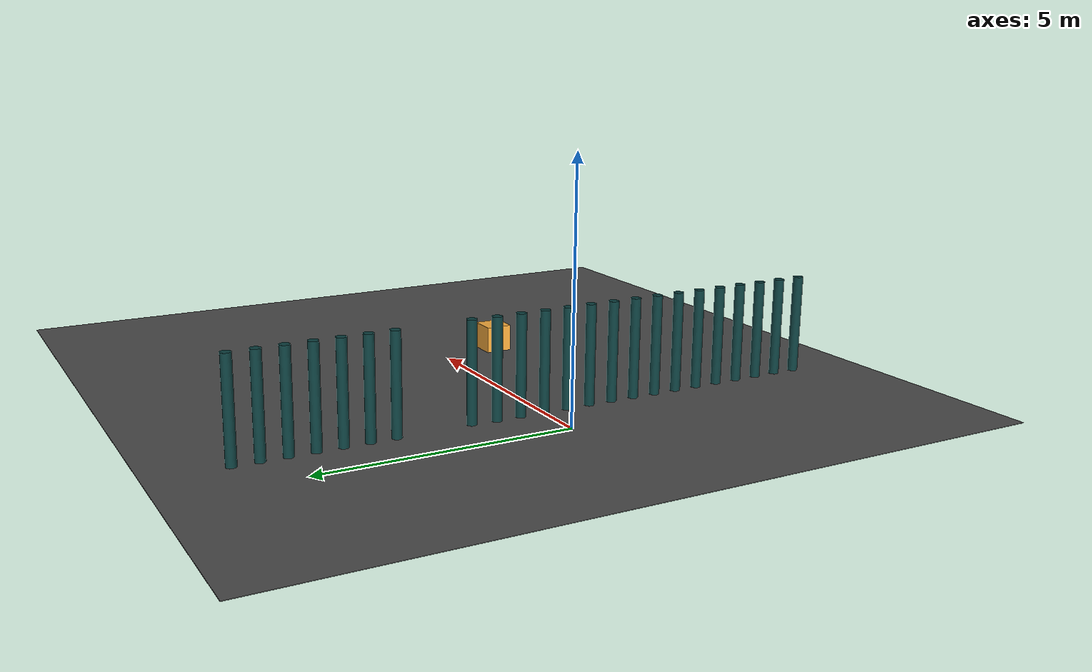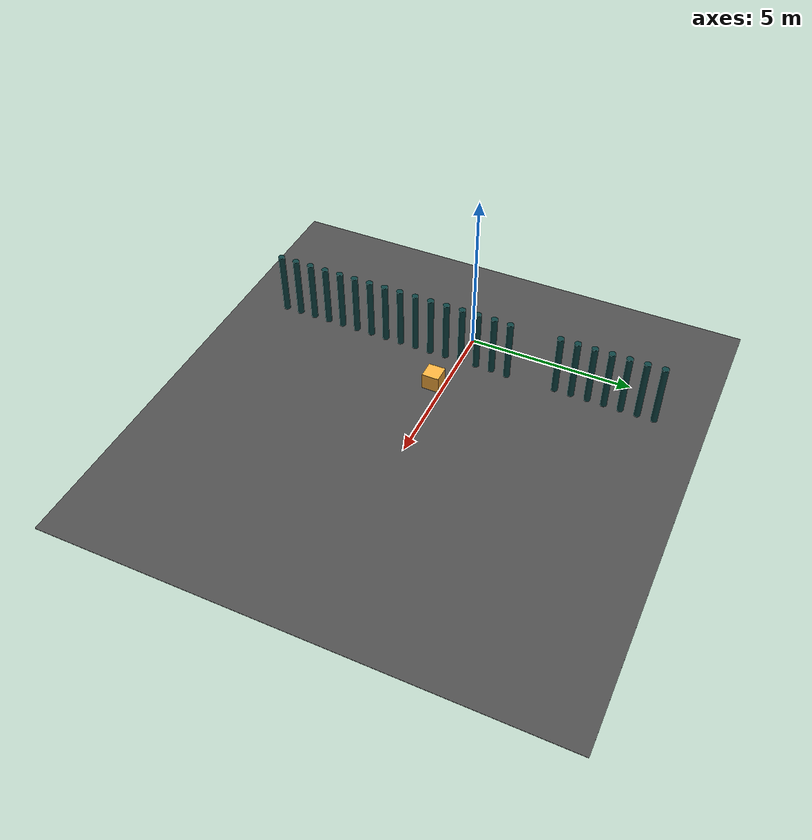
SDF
<sdf version="1.6">
 <world name="default">
  <light name="sun" type="directional">
   <pose>0 0 10 0 -0 0</pose>
   <diffuse>0.8 0.8 0.8 1</diffuse>
   <specular>0.2 0.2 0.2 1</specular>
   <attenuation>
    <range>1000</range>
    <constant>0.9</constant>
    <linear>0.01</linear>
    <quadratic>0.001</quadratic>
   </attenuation>
   <direction>-0.5 0.1 -0.9</direction>
  </light>
  <plugin name="ros_interface_plugin" filename="librotors_gazebo_ros_interface_plugin.so"/>
  <gravity>0 0 -9.8</gravity>
  <magnetic_field>6e-06 2.3e-05 -4.2e-05</magnetic_field>
  <atmosphere type="adiabatic"/>
  <physics name="default_physics" default="0" type="ode">
   <max_step_size>0.001</max_step_size>
   <real_time_factor>1</real_time_factor>
   <real_time_update_rate>1000</real_time_update_rate>
  </physics>
  <scene>
   <ambient>0.78 0.78 0.78 1</ambient>
   <background>0.35 0.35 0.35 1</background>
   <shadows>1</shadows>
  </scene>
  <spherical_coordinates>
   <surface_model>EARTH_WGS84</surface_model>
   <latitude_deg>0</latitude_deg>
   <longitude_deg>0</longitude_deg>
   <elevation>0</elevation>
   <heading_deg>0</heading_deg>
  </spherical_coordinates>
  <model name="env_plane">
   <link name="link">
    <inertial>
     <mass>1</mass>
     <inertia><ixx>1</ixx><ixy>0</ixy><ixz>0</ixz><iyy>1</iyy><iyz>0</iyz><izz>1</izz></inertia>
    </inertial>
    <visual name="visual">
     <cast_shadows>0</cast_shadows>
     <geometry><box><size>15 15 0.01</size></box></geometry>
     <material>
      <script>
       <uri>model://asphalt_plane/materials/scripts</uri>
       <uri>model://asphalt_plane/materials/textures</uri>
       <name>vrc/asphalt</name>
      </script>
      <shader type="pixel"><normal_map>__default__</normal_map></shader>
      <diffuse>0.7 0.7 0.7 1</diffuse>
      <ambient>0.5 0.5 0.5 1</ambient>
      <specular>0.5 0.5 0.5 1</specular>
      <emissive>0.7 0.7 0.7 1</emissive>
     </material>
    </visual>
    <collision name="collision">
     <geometry><box><size>20 20 0.1</size></box></geometry>
     <surface>
      <friction>
       <ode><mu>1</mu><mu2>1</mu2><fdir1>0 0 0</fdir1><slip1>0</slip1><slip2>0</slip2></ode>
       <torsional>
        <coefficient>1</coefficient>
        <patch_radius>0</patch_radius>
        <surface_radius>0</surface_radius>
        <use_patch_radius>1</use_patch_radius>
        <ode><slip>0</slip></ode>
       </torsional>
      </friction>
      <bounce><restitution_coefficient>0</restitution_coefficient><threshold>1e+06</threshold></bounce>
      <contact>
       <collide_without_contact>0</collide_without_contact>
       <collide_without_contact_bitmask>1</collide_without_contact_bitmask>
       <collide_bitmask>1</collide_bitmask>
       <ode>
        <soft_cfm>0</soft_cfm>
        <soft_erp>0.2</soft_erp>
        <kp>1e+13</kp>
        <kd>1</kd>
        <max_vel>0.01</max_vel>
        <min_depth>0</min_depth>
       </ode>
       <bullet>
        <split_impulse>1</split_impulse>
        <split_impulse_penetration_threshold>-0.01</split_impulse_penetration_threshold>
        <soft_cfm>0</soft_cfm>
        <soft_erp>0.2</soft_erp>
        <kp>1e+13</kp>
        <kd>1</kd>
       </bullet>
      </contact>
     </surface>
    </collision>
   </link>
   <static>1</static>
   <pose>4 0 0 0 -0 0</pose>
  </model>
  <model name="obstacle">
   <link name="link">
    <inertial>
     <mass>112.569</mass>
     <inertia><ixx>33.2512</ixx><ixy>0</ixy><ixz>0</ixz><iyy>33.2512</iyy><iyz>0</iyz><izz>0.537779</izz></inertia>
    </inertial>
    <visual name="visual">
     <geometry><cylinder><radius>0.1</radius><length>2</length></cylinder></geometry>
     <material>
      <script><name>Gazebo/Grey</name><uri>file://media/materials/scripts/gazebo.material</uri></script>
      <shader type="pixel"><normal_map>__default__</normal_map></shader>
      <ambient>0.05 0.25 0.25 1</ambient>
      <diffuse>0.3 0.3 0.3 1</diffuse>
      <specular>0.01 0.01 0.01 1</specular>
      <emissive>0.1 0.1 0.1 1</emissive>
      <lighting>1</lighting>
     </material>
    </visual>
    <collision name="collision">
     <geometry><cylinder><radius>0.097748</radius><length>1.87509</length></cylinder></geometry>
     <surface>
      <friction>
       <ode><mu>1</mu><mu2>1</mu2><fdir1>0 0 0</fdir1><slip1>0</slip1><slip2>0</slip2></ode>
       <torsional>
        <coefficient>1</coefficient>
        <patch_radius>0</patch_radius>
        <surface_radius>0</surface_radius>
        <use_patch_radius>1</use_patch_radius>
        <ode><slip>0</slip></ode>
       </torsional>
      </friction>
      <bounce><restitution_coefficient>0</restitution_coefficient><threshold>1e+06</threshold></bounce>
      <contact>
       <collide_without_contact>0</collide_without_contact>
       <collide_without_contact_bitmask>1</collide_without_contact_bitmask>
       <collide_bitmask>1</collide_bitmask>
       <ode>
        <soft_cfm>0</soft_cfm>
        <soft_erp>0.2</soft_erp>
        <kp>1e+13</kp>
        <kd>1</kd>
        <max_vel>0.01</max_vel>
        <min_depth>0</min_depth>
       </ode>
       <bullet>
        <split_impulse>1</split_impulse>
        <split_impulse_penetration_threshold>-0.01</split_impulse_penetration_threshold>
        <soft_cfm>0</soft_cfm>
        <soft_erp>0.2</soft_erp>
        <kp>1e+13</kp>
        <kd>1</kd>
       </bullet>
      </contact>
     </surface>
    </collision>
   </link>
   <static>0</static>
   <pose>1.00029 -0.499972 0.987551 -5.8e-05 2.7e-05 0.006767</pose>
  </model>
  <model name="obstacle_clone">
   <link name="link">
    <inertial>
     <mass>112.569</mass>
     <inertia><ixx>33.2512</ixx><ixy>0</ixy><ixz>0</ixz><iyy>33.2512</iyy><iyz>0</iyz><izz>0.537779</izz></inertia>
    </inertial>
    <visual name="visual">
     <geometry><cylinder><radius>0.1</radius><length>2</length></cylinder></geometry>
     <material>
      <script><name>Gazebo/Grey</name><uri>file://media/materials/scripts/gazebo.material</uri></script>
      <shader type="pixel"><normal_map>__default__</normal_map></shader>
      <ambient>0.05 0.25 0.25 1</ambient>
      <diffuse>0.3 0.3 0.3 1</diffuse>
      <specular>0.01 0.01 0.01 1</specular>
      <emissive>0.1 0.1 0.1 1</emissive>
      <lighting>1</lighting>
     </material>
    </visual>
    <collision name="collision">
     <geometry><cylinder><radius>0.097748</radius><length>1.87509</length></cylinder></geometry>
     <surface>
      <friction>
       <ode><mu>1</mu><mu2>1</mu2><fdir1>0 0 0</fdir1><slip1>0</slip1><slip2>0</slip2></ode>
       <torsional>
        <coefficient>1</coefficient>
        <patch_radius>0</patch_radius>
        <surface_radius>0</surface_radius>
        <use_patch_radius>1</use_patch_radius>
        <ode><slip>0</slip></ode>
       </torsional>
      </friction>
      <bounce><restitution_coefficient>0</restitution_coefficient><threshold>1e+06</threshold></bounce>
      <contact>
       <collide_without_contact>0</collide_without_contact>
       <collide_without_contact_bitmask>1</collide_without_contact_bitmask>
       <collide_bitmask>1</collide_bitmask>
       <ode>
        <soft_cfm>0</soft_cfm>
        <soft_erp>0.2</soft_erp>
        <kp>1e+13</kp>
        <kd>1</kd>
        <max_vel>0.01</max_vel>
        <min_depth>0</min_depth>
       </ode>
       <bullet>
        <split_impulse>1</split_impulse>
        <split_impulse_penetration_threshold>-0.01</split_impulse_penetration_threshold>
        <soft_cfm>0</soft_cfm>
        <soft_erp>0.2</soft_erp>
        <kp>1e+13</kp>
        <kd>1</kd>
       </bullet>
      </contact>
     </surface>
    </collision>
   </link>
   <static>0</static>
   <pose>1.00031 4.00003 0.987542 -5.8e-05 2.6e-05 0.007095</pose>
  </model>
  <model name="obstacle_clone_0">
   <link name="link">
    <inertial>
     <mass>112.569</mass>
     <inertia><ixx>33.2512</ixx><ixy>0</ixy><ixz>0</ixz><iyy>33.2512</iyy><iyz>0</iyz><izz>0.537779</izz></inertia>
    </inertial>
    <visual name="visual">
     <geometry><cylinder><radius>0.1</radius><length>2</length></cylinder></geometry>
     <material>
      <script><name>Gazebo/Grey</name><uri>file://media/materials/scripts/gazebo.material</uri></script>
      <shader type="pixel"><normal_map>__default__</normal_map></shader>
      <ambient>0.05 0.25 0.25 1</ambient>
      <diffuse>0.3 0.3 0.3 1</diffuse>
      <specular>0.01 0.01 0.01 1</specular>
      <emissive>0.1 0.1 0.1 1</emissive>
      <lighting>1</lighting>
     </material>
    </visual>
    <collision name="collision">
     <geometry><cylinder><radius>0.097748</radius><length>1.87509</length></cylinder></geometry>
     <surface>
      <friction>
       <ode><mu>1</mu><mu2>1</mu2><fdir1>0 0 0</fdir1><slip1>0</slip1><slip2>0</slip2></ode>
       <torsional>
        <coefficient>1</coefficient>
        <patch_radius>0</patch_radius>
        <surface_radius>0</surface_radius>
        <use_patch_radius>1</use_patch_radius>
        <ode><slip>0</slip></ode>
       </torsional>
      </friction>
      <bounce><restitution_coefficient>0</restitution_coefficient><threshold>1e+06</threshold></bounce>
      <contact>
       <collide_without_contact>0</collide_without_contact>
       <collide_without_contact_bitmask>1</collide_without_contact_bitmask>
       <collide_bitmask>1</collide_bitmask>
       <ode>
        <soft_cfm>0</soft_cfm>
        <soft_erp>0.2</soft_erp>
        <kp>1e+13</kp>
        <kd>1</kd>
        <max_vel>0.01</max_vel>
        <min_depth>0</min_depth>
       </ode>
       <bullet>
        <split_impulse>1</split_impulse>
        <split_impulse_penetration_threshold>-0.01</split_impulse_penetration_threshold>
        <soft_cfm>0</soft_cfm>
        <soft_erp>0.2</soft_erp>
        <kp>1e+13</kp>
        <kd>1</kd>
       </bullet>
      </contact>
     </surface>
    </collision>
   </link>
   <static>0</static>
   <pose>1.03008 1.50003 0.987541 -5.8e-05 2.5e-05 0.006556</pose>
  </model>
  <model name="obstacle_clone_1">
   <link name="link">
    <inertial>
     <mass>112.569</mass>
     <inertia><ixx>33.2512</ixx><ixy>0</ixy><ixz>0</ixz><iyy>33.2512</iyy><iyz>0</iyz><izz>0.537779</izz></inertia>
    </inertial>
    <visual name="visual">
     <geometry><cylinder><radius>0.1</radius><length>2</length></cylinder></geometry>
     <material>
      <script><name>Gazebo/Grey</name><uri>file://media/materials/scripts/gazebo.material</uri></script>
      <shader type="pixel"><normal_map>__default__</normal_map></shader>
      <ambient>0.05 0.25 0.25 1</ambient>
      <diffuse>0.3 0.3 0.3 1</diffuse>
      <specular>0.01 0.01 0.01 1</specular>
      <emissive>0.1 0.1 0.1 1</emissive>
      <lighting>1</lighting>
     </material>
    </visual>
    <collision name="collision">
     <geometry><cylinder><radius>0.097748</radius><length>1.87509</length></cylinder></geometry>
     <surface>
      <friction>
       <ode><mu>1</mu><mu2>1</mu2><fdir1>0 0 0</fdir1><slip1>0</slip1><slip2>0</slip2></ode>
       <torsional>
        <coefficient>1</coefficient>
        <patch_radius>0</patch_radius>
        <surface_radius>0</surface_radius>
        <use_patch_radius>1</use_patch_radius>
        <ode><slip>0</slip></ode>
       </torsional>
      </friction>
      <bounce><restitution_coefficient>0</restitution_coefficient><threshold>1e+06</threshold></bounce>
      <contact>
       <collide_without_contact>0</collide_without_contact>
       <collide_without_contact_bitmask>1</collide_without_contact_bitmask>
       <collide_bitmask>1</collide_bitmask>
       <ode>
        <soft_cfm>0</soft_cfm>
        <soft_erp>0.2</soft_erp>
        <kp>1e+13</kp>
        <kd>1</kd>
        <max_vel>0.01</max_vel>
        <min_depth>0</min_depth>
       </ode>
       <bullet>
        <split_impulse>1</split_impulse>
        <split_impulse_penetration_threshold>-0.01</split_impulse_penetration_threshold>
        <soft_cfm>0</soft_cfm>
        <soft_erp>0.2</soft_erp>
        <kp>1e+13</kp>
        <kd>1</kd>
       </bullet>
      </contact>
     </surface>
    </collision>
   </link>
   <static>0</static>
   <pose>1.00019 -1.99997 0.987542 -6e-05 2.9e-05 0.011547</pose>
  </model>
  <model name="obstacle_clone_4">
   <link name="link">
    <inertial>
     <mass>112.569</mass>
     <inertia><ixx>33.2512</ixx><ixy>0</ixy><ixz>0</ixz><iyy>33.2512</iyy><iyz>0</iyz><izz>0.537779</izz></inertia>
    </inertial>
    <visual name="visual">
     <geometry><cylinder><radius>0.1</radius><length>2</length></cylinder></geometry>
     <material>
      <script><name>Gazebo/Grey</name><uri>file://media/materials/scripts/gazebo.material</uri></script>
      <shader type="pixel"><normal_map>__default__</normal_map></shader>
      <ambient>0.05 0.25 0.25 1</ambient>
      <diffuse>0.3 0.3 0.3 1</diffuse>
      <specular>0.01 0.01 0.01 1</specular>
      <emissive>0.1 0.1 0.1 1</emissive>
      <lighting>1</lighting>
     </material>
    </visual>
    <collision name="collision">
     <geometry><cylinder><radius>0.097748</radius><length>1.87509</length></cylinder></geometry>
     <surface>
      <friction>
       <ode><mu>1</mu><mu2>1</mu2><fdir1>0 0 0</fdir1><slip1>0</slip1><slip2>0</slip2></ode>
       <torsional>
        <coefficient>1</coefficient>
        <patch_radius>0</patch_radius>
        <surface_radius>0</surface_radius>
        <use_patch_radius>1</use_patch_radius>
        <ode><slip>0</slip></ode>
       </torsional>
      </friction>
      <bounce><restitution_coefficient>0</restitution_coefficient><threshold>1e+06</threshold></bounce>
      <contact>
       <collide_without_contact>0</collide_without_contact>
       <collide_without_contact_bitmask>1</collide_without_contact_bitmask>
       <collide_bitmask>1</collide_bitmask>
       <ode>
        <soft_cfm>0</soft_cfm>
        <soft_erp>0.2</soft_erp>
        <kp>1e+13</kp>
        <kd>1</kd>
        <max_vel>0.01</max_vel>
        <min_depth>0</min_depth>
       </ode>
       <bullet>
        <split_impulse>1</split_impulse>
        <split_impulse_penetration_threshold>-0.01</split_impulse_penetration_threshold>
        <soft_cfm>0</soft_cfm>
        <soft_erp>0.2</soft_erp>
        <kp>1e+13</kp>
        <kd>1</kd>
       </bullet>
      </contact>
     </surface>
    </collision>
   </link>
   <static>0</static>
   <pose>1.00014 5.00002 0.987541 -5.4e-05 2.3e-05 0.011377</pose>
  </model>
  <model name="obstacle_clone_7">
   <link name="link">
    <inertial>
     <mass>112.569</mass>
     <inertia><ixx>33.2512</ixx><ixy>0</ixy><ixz>0</ixz><iyy>33.2512</iyy><iyz>0</iyz><izz>0.537779</izz></inertia>
    </inertial>
    <visual name="visual">
     <geometry><cylinder><radius>0.1</radius><length>2</length></cylinder></geometry>
     <material>
      <script><name>Gazebo/Grey</name><uri>file://media/materials/scripts/gazebo.material</uri></script>
      <shader type="pixel"><normal_map>__default__</normal_map></shader>
      <ambient>0.05 0.25 0.25 1</ambient>
      <diffuse>0.3 0.3 0.3 1</diffuse>
      <specular>0.01 0.01 0.01 1</specular>
      <emissive>0.1 0.1 0.1 1</emissive>
      <lighting>1</lighting>
     </material>
    </visual>
    <collision name="collision">
     <geometry><cylinder><radius>0.097748</radius><length>1.87509</length></cylinder></geometry>
     <surface>
      <friction>
       <ode><mu>1</mu><mu2>1</mu2><fdir1>0 0 0</fdir1><slip1>0</slip1><slip2>0</slip2></ode>
       <torsional>
        <coefficient>1</coefficient>
        <patch_radius>0</patch_radius>
        <surface_radius>0</surface_radius>
        <use_patch_radius>1</use_patch_radius>
        <ode><slip>0</slip></ode>
       </torsional>
      </friction>
      <bounce><restitution_coefficient>0</restitution_coefficient><threshold>1e+06</threshold></bounce>
      <contact>
       <collide_without_contact>0</collide_without_contact>
       <collide_without_contact_bitmask>1</collide_without_contact_bitmask>
       <collide_bitmask>1</collide_bitmask>
       <ode>
        <soft_cfm>0</soft_cfm>
        <soft_erp>0.2</soft_erp>
        <kp>1e+13</kp>
        <kd>1</kd>
        <max_vel>0.01</max_vel>
        <min_depth>0</min_depth>
       </ode>
       <bullet>
        <split_impulse>1</split_impulse>
        <split_impulse_penetration_threshold>-0.01</split_impulse_penetration_threshold>
        <soft_cfm>0</soft_cfm>
        <soft_erp>0.2</soft_erp>
        <kp>1e+13</kp>
        <kd>1</kd>
       </bullet>
      </contact>
     </surface>
    </collision>
   </link>
   <static>0</static>
   <pose>0.999995 3.49999 0.987543 -2.8e-05 1.2e-05 0.004866</pose>
  </model>
  <model name="obstacle_clone_9">
   <link name="link">
    <inertial>
     <mass>112.569</mass>
     <inertia><ixx>33.2512</ixx><ixy>0</ixy><ixz>0</ixz><iyy>33.2512</iyy><iyz>0</iyz><izz>0.537779</izz></inertia>
    </inertial>
    <visual name="visual">
     <geometry><cylinder><radius>0.1</radius><length>2</length></cylinder></geometry>
     <material>
      <script><name>Gazebo/Grey</name><uri>file://media/materials/scripts/gazebo.material</uri></script>
      <shader type="pixel"><normal_map>__default__</normal_map></shader>
      <ambient>0.05 0.25 0.25 1</ambient>
      <diffuse>0.3 0.3 0.3 1</diffuse>
      <specular>0.01 0.01 0.01 1</specular>
      <emissive>0.1 0.1 0.1 1</emissive>
      <lighting>1</lighting>
     </material>
    </visual>
    <collision name="collision">
     <geometry><cylinder><radius>0.097748</radius><length>1.87509</length></cylinder></geometry>
     <surface>
      <friction>
       <ode><mu>1</mu><mu2>1</mu2><fdir1>0 0 0</fdir1><slip1>0</slip1><slip2>0</slip2></ode>
       <torsional>
        <coefficient>1</coefficient>
        <patch_radius>0</patch_radius>
        <surface_radius>0</surface_radius>
        <use_patch_radius>1</use_patch_radius>
        <ode><slip>0</slip></ode>
       </torsional>
      </friction>
      <bounce><restitution_coefficient>0</restitution_coefficient><threshold>1e+06</threshold></bounce>
      <contact>
       <collide_without_contact>0</collide_without_contact>
       <collide_without_contact_bitmask>1</collide_without_contact_bitmask>
       <collide_bitmask>1</collide_bitmask>
       <ode>
        <soft_cfm>0</soft_cfm>
        <soft_erp>0.2</soft_erp>
        <kp>1e+13</kp>
        <kd>1</kd>
        <max_vel>0.01</max_vel>
        <min_depth>0</min_depth>
       </ode>
       <bullet>
        <split_impulse>1</split_impulse>
        <split_impulse_penetration_threshold>-0.01</split_impulse_penetration_threshold>
        <soft_cfm>0</soft_cfm>
        <soft_erp>0.2</soft_erp>
        <kp>1e+13</kp>
        <kd>1</kd>
       </bullet>
      </contact>
     </surface>
    </collision>
   </link>
   <static>0</static>
   <pose>1.00016 -2.49998 0.987541 -5.1e-05 2.4e-05 0.011133</pose>
  </model>
  <model name="obstacle_clone_11">
   <link name="link">
    <inertial>
     <mass>112.569</mass>
     <inertia><ixx>33.2512</ixx><ixy>0</ixy><ixz>0</ixz><iyy>33.2512</iyy><iyz>0</iyz><izz>0.537779</izz></inertia>
    </inertial>
    <visual name="visual">
     <geometry><cylinder><radius>0.1</radius><length>2</length></cylinder></geometry>
     <material>
      <script><name>Gazebo/Grey</name><uri>file://media/materials/scripts/gazebo.material</uri></script>
      <shader type="pixel"><normal_map>__default__</normal_map></shader>
      <ambient>0.05 0.25 0.25 1</ambient>
      <diffuse>0.3 0.3 0.3 1</diffuse>
      <specular>0.01 0.01 0.01 1</specular>
      <emissive>0.1 0.1 0.1 1</emissive>
      <lighting>1</lighting>
     </material>
    </visual>
    <collision name="collision">
     <geometry><cylinder><radius>0.097748</radius><length>1.87509</length></cylinder></geometry>
     <surface>
      <friction>
       <ode><mu>1</mu><mu2>1</mu2><fdir1>0 0 0</fdir1><slip1>0</slip1><slip2>0</slip2></ode>
       <torsional>
        <coefficient>1</coefficient>
        <patch_radius>0</patch_radius>
        <surface_radius>0</surface_radius>
        <use_patch_radius>1</use_patch_radius>
        <ode><slip>0</slip></ode>
       </torsional>
      </friction>
      <bounce><restitution_coefficient>0</restitution_coefficient><threshold>1e+06</threshold></bounce>
      <contact>
       <collide_without_contact>0</collide_without_contact>
       <collide_without_contact_bitmask>1</collide_without_contact_bitmask>
       <collide_bitmask>1</collide_bitmask>
       <ode>
        <soft_cfm>0</soft_cfm>
        <soft_erp>0.2</soft_erp>
        <kp>1e+13</kp>
        <kd>1</kd>
        <max_vel>0.01</max_vel>
        <min_depth>0</min_depth>
       </ode>
       <bullet>
        <split_impulse>1</split_impulse>
        <split_impulse_penetration_threshold>-0.01</split_impulse_penetration_threshold>
        <soft_cfm>0</soft_cfm>
        <soft_erp>0.2</soft_erp>
        <kp>1e+13</kp>
        <kd>1</kd>
       </bullet>
      </contact>
     </surface>
    </collision>
   </link>
   <static>0</static>
   <pose>1 6 0.987543 -3e-05 1.2e-05 0.008213</pose>
  </model>
  <model name="obstacle_clone_13">
   <link name="link">
    <inertial>
     <mass>112.569</mass>
     <inertia><ixx>33.2512</ixx><ixy>0</ixy><ixz>0</ixz><iyy>33.2512</iyy><iyz>0</iyz><izz>0.537779</izz></inertia>
    </inertial>
    <visual name="visual">
     <geometry><cylinder><radius>0.1</radius><length>2</length></cylinder></geometry>
     <material>
      <script><name>Gazebo/Grey</name><uri>file://media/materials/scripts/gazebo.material</uri></script>
      <shader type="pixel"><normal_map>__default__</normal_map></shader>
      <ambient>0.05 0.25 0.25 1</ambient>
      <diffuse>0.3 0.3 0.3 1</diffuse>
      <specular>0.01 0.01 0.01 1</specular>
      <emissive>0.1 0.1 0.1 1</emissive>
      <lighting>1</lighting>
     </material>
    </visual>
    <collision name="collision">
     <geometry><cylinder><radius>0.097748</radius><length>1.87509</length></cylinder></geometry>
     <surface>
      <friction>
       <ode><mu>1</mu><mu2>1</mu2><fdir1>0 0 0</fdir1><slip1>0</slip1><slip2>0</slip2></ode>
       <torsional>
        <coefficient>1</coefficient>
        <patch_radius>0</patch_radius>
        <surface_radius>0</surface_radius>
        <use_patch_radius>1</use_patch_radius>
        <ode><slip>0</slip></ode>
       </torsional>
      </friction>
      <bounce><restitution_coefficient>0</restitution_coefficient><threshold>1e+06</threshold></bounce>
      <contact>
       <collide_without_contact>0</collide_without_contact>
       <collide_without_contact_bitmask>1</collide_without_contact_bitmask>
       <collide_bitmask>1</collide_bitmask>
       <ode>
        <soft_cfm>0</soft_cfm>
        <soft_erp>0.2</soft_erp>
        <kp>1e+13</kp>
        <kd>1</kd>
        <max_vel>0.01</max_vel>
        <min_depth>0</min_depth>
       </ode>
       <bullet>
        <split_impulse>1</split_impulse>
        <split_impulse_penetration_threshold>-0.01</split_impulse_penetration_threshold>
        <soft_cfm>0</soft_cfm>
        <soft_erp>0.2</soft_erp>
        <kp>1e+13</kp>
        <kd>1</kd>
       </bullet>
      </contact>
     </surface>
    </collision>
   </link>
   <static>0</static>
   <pose>0.999997 0.499993 0.987543 -2.9e-05 1.3e-05 0.003883</pose>
  </model>
  <model name="obstacle_clone_14">
   <link name="link">
    <inertial>
     <mass>112.569</mass>
     <inertia><ixx>33.2512</ixx><ixy>0</ixy><ixz>0</ixz><iyy>33.2512</iyy><iyz>0</iyz><izz>0.537779</izz></inertia>
    </inertial>
    <visual name="visual">
     <geometry><cylinder><radius>0.1</radius><length>2</length></cylinder></geometry>
     <material>
      <script><name>Gazebo/Grey</name><uri>file://media/materials/scripts/gazebo.material</uri></script>
      <shader type="pixel"><normal_map>__default__</normal_map></shader>
      <ambient>0.05 0.25 0.25 1</ambient>
      <diffuse>0.3 0.3 0.3 1</diffuse>
      <specular>0.01 0.01 0.01 1</specular>
      <emissive>0.1 0.1 0.1 1</emissive>
      <lighting>1</lighting>
     </material>
    </visual>
    <collision name="collision">
     <geometry><cylinder><radius>0.097748</radius><length>1.87509</length></cylinder></geometry>
     <surface>
      <friction>
       <ode><mu>1</mu><mu2>1</mu2><fdir1>0 0 0</fdir1><slip1>0</slip1><slip2>0</slip2></ode>
       <torsional>
        <coefficient>1</coefficient>
        <patch_radius>0</patch_radius>
        <surface_radius>0</surface_radius>
        <use_patch_radius>1</use_patch_radius>
        <ode><slip>0</slip></ode>
       </torsional>
      </friction>
      <bounce><restitution_coefficient>0</restitution_coefficient><threshold>1e+06</threshold></bounce>
      <contact>
       <collide_without_contact>0</collide_without_contact>
       <collide_without_contact_bitmask>1</collide_without_contact_bitmask>
       <collide_bitmask>1</collide_bitmask>
       <ode>
        <soft_cfm>0</soft_cfm>
        <soft_erp>0.2</soft_erp>
        <kp>1e+13</kp>
        <kd>1</kd>
        <max_vel>0.01</max_vel>
        <min_depth>0</min_depth>
       </ode>
       <bullet>
        <split_impulse>1</split_impulse>
        <split_impulse_penetration_threshold>-0.01</split_impulse_penetration_threshold>
        <soft_cfm>0</soft_cfm>
        <soft_erp>0.2</soft_erp>
        <kp>1e+13</kp>
        <kd>1</kd>
       </bullet>
      </contact>
     </surface>
    </collision>
   </link>
   <static>0</static>
   <pose>1.00024 3.6e-05 0.987551 -5.8e-05 2.7e-05 0.010523</pose>
  </model>
  <model name="obstacle_clone_21">
   <link name="link">
    <inertial>
     <mass>112.569</mass>
     <inertia><ixx>33.2512</ixx><ixy>0</ixy><ixz>0</ixz><iyy>33.2512</iyy><iyz>0</iyz><izz>0.537779</izz></inertia>
    </inertial>
    <visual name="visual">
     <geometry><cylinder><radius>0.1</radius><length>2</length></cylinder></geometry>
     <material>
      <script><name>Gazebo/Grey</name><uri>file://media/materials/scripts/gazebo.material</uri></script>
      <shader type="pixel"><normal_map>__default__</normal_map></shader>
      <ambient>0.05 0.25 0.25 1</ambient>
      <diffuse>0.3 0.3 0.3 1</diffuse>
      <specular>0.01 0.01 0.01 1</specular>
      <emissive>0.1 0.1 0.1 1</emissive>
      <lighting>1</lighting>
     </material>
    </visual>
    <collision name="collision">
     <geometry><cylinder><radius>0.097748</radius><length>1.87509</length></cylinder></geometry>
     <surface>
      <friction>
       <ode><mu>1</mu><mu2>1</mu2><fdir1>0 0 0</fdir1><slip1>0</slip1><slip2>0</slip2></ode>
       <torsional>
        <coefficient>1</coefficient>
        <patch_radius>0</patch_radius>
        <surface_radius>0</surface_radius>
        <use_patch_radius>1</use_patch_radius>
        <ode><slip>0</slip></ode>
       </torsional>
      </friction>
      <bounce><restitution_coefficient>0</restitution_coefficient><threshold>1e+06</threshold></bounce>
      <contact>
       <collide_without_contact>0</collide_without_contact>
       <collide_without_contact_bitmask>1</collide_without_contact_bitmask>
       <collide_bitmask>1</collide_bitmask>
       <ode>
        <soft_cfm>0</soft_cfm>
        <soft_erp>0.2</soft_erp>
        <kp>1e+13</kp>
        <kd>1</kd>
        <max_vel>0.01</max_vel>
        <min_depth>0</min_depth>
       </ode>
       <bullet>
        <split_impulse>1</split_impulse>
        <split_impulse_penetration_threshold>-0.01</split_impulse_penetration_threshold>
        <soft_cfm>0</soft_cfm>
        <soft_erp>0.2</soft_erp>
        <kp>1e+13</kp>
        <kd>1</kd>
       </bullet>
      </contact>
     </surface>
    </collision>
   </link>
   <static>0</static>
   <pose>1.00025 1.00003 0.987551 -5.5e-05 2.6e-05 0.010918</pose>
  </model>
  <model name="obstacle_clone_23">
   <link name="link">
    <inertial>
     <mass>112.569</mass>
     <inertia><ixx>33.2512</ixx><ixy>0</ixy><ixz>0</ixz><iyy>33.2512</iyy><iyz>0</iyz><izz>0.537779</izz></inertia>
    </inertial>
    <visual name="visual">
     <geometry><cylinder><radius>0.1</radius><length>2</length></cylinder></geometry>
     <material>
      <script><name>Gazebo/Grey</name><uri>file://media/materials/scripts/gazebo.material</uri></script>
      <shader type="pixel"><normal_map>__default__</normal_map></shader>
      <ambient>0.05 0.25 0.25 1</ambient>
      <diffuse>0.3 0.3 0.3 1</diffuse>
      <specular>0.01 0.01 0.01 1</specular>
      <emissive>0.1 0.1 0.1 1</emissive>
      <lighting>1</lighting>
     </material>
    </visual>
    <collision name="collision">
     <geometry><cylinder><radius>0.097748</radius><length>1.87509</length></cylinder></geometry>
     <surface>
      <friction>
       <ode><mu>1</mu><mu2>1</mu2><fdir1>0 0 0</fdir1><slip1>0</slip1><slip2>0</slip2></ode>
       <torsional>
        <coefficient>1</coefficient>
        <patch_radius>0</patch_radius>
        <surface_radius>0</surface_radius>
        <use_patch_radius>1</use_patch_radius>
        <ode><slip>0</slip></ode>
       </torsional>
      </friction>
      <bounce><restitution_coefficient>0</restitution_coefficient><threshold>1e+06</threshold></bounce>
      <contact>
       <collide_without_contact>0</collide_without_contact>
       <collide_without_contact_bitmask>1</collide_without_contact_bitmask>
       <collide_bitmask>1</collide_bitmask>
       <ode>
        <soft_cfm>0</soft_cfm>
        <soft_erp>0.2</soft_erp>
        <kp>1e+13</kp>
        <kd>1</kd>
        <max_vel>0.01</max_vel>
        <min_depth>0</min_depth>
       </ode>
       <bullet>
        <split_impulse>1</split_impulse>
        <split_impulse_penetration_threshold>-0.01</split_impulse_penetration_threshold>
        <soft_cfm>0</soft_cfm>
        <soft_erp>0.2</soft_erp>
        <kp>1e+13</kp>
        <kd>1</kd>
       </bullet>
      </contact>
     </surface>
    </collision>
   </link>
   <static>0</static>
   <pose>1.00016 4.50002 0.987542 -6.1e-05 2.7e-05 0.010872</pose>
  </model>
  <model name="obstacle_clone_24">
   <link name="link">
    <inertial>
     <mass>112.569</mass>
     <inertia><ixx>33.2512</ixx><ixy>0</ixy><ixz>0</ixz><iyy>33.2512</iyy><iyz>0</iyz><izz>0.537779</izz></inertia>
    </inertial>
    <visual name="visual">
     <geometry><cylinder><radius>0.1</radius><length>2</length></cylinder></geometry>
     <material>
      <script><name>Gazebo/Grey</name><uri>file://media/materials/scripts/gazebo.material</uri></script>
      <shader type="pixel"><normal_map>__default__</normal_map></shader>
      <ambient>0.05 0.25 0.25 1</ambient>
      <diffuse>0.3 0.3 0.3 1</diffuse>
      <specular>0.01 0.01 0.01 1</specular>
      <emissive>0.1 0.1 0.1 1</emissive>
      <lighting>1</lighting>
     </material>
    </visual>
    <collision name="collision">
     <geometry><cylinder><radius>0.097748</radius><length>1.87509</length></cylinder></geometry>
     <surface>
      <friction>
       <ode><mu>1</mu><mu2>1</mu2><fdir1>0 0 0</fdir1><slip1>0</slip1><slip2>0</slip2></ode>
       <torsional>
        <coefficient>1</coefficient>
        <patch_radius>0</patch_radius>
        <surface_radius>0</surface_radius>
        <use_patch_radius>1</use_patch_radius>
        <ode><slip>0</slip></ode>
       </torsional>
      </friction>
      <bounce><restitution_coefficient>0</restitution_coefficient><threshold>1e+06</threshold></bounce>
      <contact>
       <collide_without_contact>0</collide_without_contact>
       <collide_without_contact_bitmask>1</collide_without_contact_bitmask>
       <collide_bitmask>1</collide_bitmask>
       <ode>
        <soft_cfm>0</soft_cfm>
        <soft_erp>0.2</soft_erp>
        <kp>1e+13</kp>
        <kd>1</kd>
        <max_vel>0.01</max_vel>
        <min_depth>0</min_depth>
       </ode>
       <bullet>
        <split_impulse>1</split_impulse>
        <split_impulse_penetration_threshold>-0.01</split_impulse_penetration_threshold>
        <soft_cfm>0</soft_cfm>
        <soft_erp>0.2</soft_erp>
        <kp>1e+13</kp>
        <kd>1</kd>
       </bullet>
      </contact>
     </surface>
    </collision>
   </link>
   <static>0</static>
   <pose>1.00011 -2.99998 0.987551 -5.8e-05 2.5e-05 0.010738</pose>
  </model>
  <model name="obstacle_clone_25">
   <link name="link">
    <inertial>
     <mass>112.569</mass>
     <inertia><ixx>33.2512</ixx><ixy>0</ixy><ixz>0</ixz><iyy>33.2512</iyy><iyz>0</iyz><izz>0.537779</izz></inertia>
    </inertial>
    <visual name="visual">
     <geometry><cylinder><radius>0.1</radius><length>2</length></cylinder></geometry>
     <material>
      <script><name>Gazebo/Grey</name><uri>file://media/materials/scripts/gazebo.material</uri></script>
      <shader type="pixel"><normal_map>__default__</normal_map></shader>
      <ambient>0.05 0.25 0.25 1</ambient>
      <diffuse>0.3 0.3 0.3 1</diffuse>
      <specular>0.01 0.01 0.01 1</specular>
      <emissive>0.1 0.1 0.1 1</emissive>
      <lighting>1</lighting>
     </material>
    </visual>
    <collision name="collision">
     <geometry><cylinder><radius>0.097748</radius><length>1.87509</length></cylinder></geometry>
     <surface>
      <friction>
       <ode><mu>1</mu><mu2>1</mu2><fdir1>0 0 0</fdir1><slip1>0</slip1><slip2>0</slip2></ode>
       <torsional>
        <coefficient>1</coefficient>
        <patch_radius>0</patch_radius>
        <surface_radius>0</surface_radius>
        <use_patch_radius>1</use_patch_radius>
        <ode><slip>0</slip></ode>
       </torsional>
      </friction>
      <bounce><restitution_coefficient>0</restitution_coefficient><threshold>1e+06</threshold></bounce>
      <contact>
       <collide_without_contact>0</collide_without_contact>
       <collide_without_contact_bitmask>1</collide_without_contact_bitmask>
       <collide_bitmask>1</collide_bitmask>
       <ode>
        <soft_cfm>0</soft_cfm>
        <soft_erp>0.2</soft_erp>
        <kp>1e+13</kp>
        <kd>1</kd>
        <max_vel>0.01</max_vel>
        <min_depth>0</min_depth>
       </ode>
       <bullet>
        <split_impulse>1</split_impulse>
        <split_impulse_penetration_threshold>-0.01</split_impulse_penetration_threshold>
        <soft_cfm>0</soft_cfm>
        <soft_erp>0.2</soft_erp>
        <kp>1e+13</kp>
        <kd>1</kd>
       </bullet>
      </contact>
     </surface>
    </collision>
   </link>
   <static>0</static>
   <pose>1.00013 5.5 0.987551 -5.9e-05 2.5e-05 0.010717</pose>
  </model>
  <model name="obstacle_clone_26">
   <link name="link">
    <inertial>
     <mass>112.569</mass>
     <inertia><ixx>33.2512</ixx><ixy>0</ixy><ixz>0</ixz><iyy>33.2512</iyy><iyz>0</iyz><izz>0.537779</izz></inertia>
    </inertial>
    <visual name="visual">
     <geometry><cylinder><radius>0.1</radius><length>2</length></cylinder></geometry>
     <material>
      <script><name>Gazebo/Grey</name><uri>file://media/materials/scripts/gazebo.material</uri></script>
      <shader type="pixel"><normal_map>__default__</normal_map></shader>
      <ambient>0.05 0.25 0.25 1</ambient>
      <diffuse>0.3 0.3 0.3 1</diffuse>
      <specular>0.01 0.01 0.01 1</specular>
      <emissive>0.1 0.1 0.1 1</emissive>
      <lighting>1</lighting>
     </material>
    </visual>
    <collision name="collision">
     <geometry><cylinder><radius>0.097748</radius><length>1.87509</length></cylinder></geometry>
     <surface>
      <friction>
       <ode><mu>1</mu><mu2>1</mu2><fdir1>0 0 0</fdir1><slip1>0</slip1><slip2>0</slip2></ode>
       <torsional>
        <coefficient>1</coefficient>
        <patch_radius>0</patch_radius>
        <surface_radius>0</surface_radius>
        <use_patch_radius>1</use_patch_radius>
        <ode><slip>0</slip></ode>
       </torsional>
      </friction>
      <bounce><restitution_coefficient>0</restitution_coefficient><threshold>1e+06</threshold></bounce>
      <contact>
       <collide_without_contact>0</collide_without_contact>
       <collide_without_contact_bitmask>1</collide_without_contact_bitmask>
       <collide_bitmask>1</collide_bitmask>
       <ode>
        <soft_cfm>0</soft_cfm>
        <soft_erp>0.2</soft_erp>
        <kp>1e+13</kp>
        <kd>1</kd>
        <max_vel>0.01</max_vel>
        <min_depth>0</min_depth>
       </ode>
       <bullet>
        <split_impulse>1</split_impulse>
        <split_impulse_penetration_threshold>-0.01</split_impulse_penetration_threshold>
        <soft_cfm>0</soft_cfm>
        <soft_erp>0.2</soft_erp>
        <kp>1e+13</kp>
        <kd>1</kd>
       </bullet>
      </contact>
     </surface>
    </collision>
   </link>
   <static>0</static>
   <pose>1.00029 -1.49997 0.987551 -5.4e-05 2.5e-05 0.009611</pose>
  </model>
  <model name="obstacle_clone_29">
   <link name="link">
    <inertial>
     <mass>112.569</mass>
     <inertia><ixx>33.2512</ixx><ixy>0</ixy><ixz>0</ixz><iyy>33.2512</iyy><iyz>0</iyz><izz>0.537779</izz></inertia>
    </inertial>
    <visual name="visual">
     <geometry><cylinder><radius>0.1</radius><length>2</length></cylinder></geometry>
     <material>
      <script><name>Gazebo/Grey</name><uri>file://media/materials/scripts/gazebo.material</uri></script>
      <shader type="pixel"><normal_map>__default__</normal_map></shader>
      <ambient>0.05 0.25 0.25 1</ambient>
      <diffuse>0.3 0.3 0.3 1</diffuse>
      <specular>0.01 0.01 0.01 1</specular>
      <emissive>0.1 0.1 0.1 1</emissive>
      <lighting>1</lighting>
     </material>
    </visual>
    <collision name="collision">
     <geometry><cylinder><radius>0.097748</radius><length>1.87509</length></cylinder></geometry>
     <surface>
      <friction>
       <ode><mu>1</mu><mu2>1</mu2><fdir1>0 0 0</fdir1><slip1>0</slip1><slip2>0</slip2></ode>
       <torsional>
        <coefficient>1</coefficient>
        <patch_radius>0</patch_radius>
        <surface_radius>0</surface_radius>
        <use_patch_radius>1</use_patch_radius>
        <ode><slip>0</slip></ode>
       </torsional>
      </friction>
      <bounce><restitution_coefficient>0</restitution_coefficient><threshold>1e+06</threshold></bounce>
      <contact>
       <collide_without_contact>0</collide_without_contact>
       <collide_without_contact_bitmask>1</collide_without_contact_bitmask>
       <collide_bitmask>1</collide_bitmask>
       <ode>
        <soft_cfm>0</soft_cfm>
        <soft_erp>0.2</soft_erp>
        <kp>1e+13</kp>
        <kd>1</kd>
        <max_vel>0.01</max_vel>
        <min_depth>0</min_depth>
       </ode>
       <bullet>
        <split_impulse>1</split_impulse>
        <split_impulse_penetration_threshold>-0.01</split_impulse_penetration_threshold>
        <soft_cfm>0</soft_cfm>
        <soft_erp>0.2</soft_erp>
        <kp>1e+13</kp>
        <kd>1</kd>
       </bullet>
      </contact>
     </surface>
    </collision>
   </link>
   <static>0</static>
   <pose>1.0003 3.00002 0.98755 -5.1e-05 2.3e-05 0.010214</pose>
  </model>
  <model name="obstacle_clone_31">
   <link name="link">
    <inertial>
     <mass>112.569</mass>
     <inertia><ixx>33.2512</ixx><ixy>0</ixy><ixz>0</ixz><iyy>33.2512</iyy><iyz>0</iyz><izz>0.537779</izz></inertia>
    </inertial>
    <visual name="visual">
     <geometry><cylinder><radius>0.1</radius><length>2</length></cylinder></geometry>
     <material>
      <script><name>Gazebo/Grey</name><uri>file://media/materials/scripts/gazebo.material</uri></script>
      <shader type="pixel"><normal_map>__default__</normal_map></shader>
      <ambient>0.05 0.25 0.25 1</ambient>
      <diffuse>0.3 0.3 0.3 1</diffuse>
      <specular>0.01 0.01 0.01 1</specular>
      <emissive>0.1 0.1 0.1 1</emissive>
      <lighting>1</lighting>
     </material>
    </visual>
    <collision name="collision">
     <geometry><cylinder><radius>0.097748</radius><length>1.87509</length></cylinder></geometry>
     <surface>
      <friction>
       <ode><mu>1</mu><mu2>1</mu2><fdir1>0 0 0</fdir1><slip1>0</slip1><slip2>0</slip2></ode>
       <torsional>
        <coefficient>1</coefficient>
        <patch_radius>0</patch_radius>
        <surface_radius>0</surface_radius>
        <use_patch_radius>1</use_patch_radius>
        <ode><slip>0</slip></ode>
       </torsional>
      </friction>
      <bounce><restitution_coefficient>0</restitution_coefficient><threshold>1e+06</threshold></bounce>
      <contact>
       <collide_without_contact>0</collide_without_contact>
       <collide_without_contact_bitmask>1</collide_without_contact_bitmask>
       <collide_bitmask>1</collide_bitmask>
       <ode>
        <soft_cfm>0</soft_cfm>
        <soft_erp>0.2</soft_erp>
        <kp>1e+13</kp>
        <kd>1</kd>
        <max_vel>0.01</max_vel>
        <min_depth>0</min_depth>
       </ode>
       <bullet>
        <split_impulse>1</split_impulse>
        <split_impulse_penetration_threshold>-0.01</split_impulse_penetration_threshold>
        <soft_cfm>0</soft_cfm>
        <soft_erp>0.2</soft_erp>
        <kp>1e+13</kp>
        <kd>1</kd>
       </bullet>
      </contact>
     </surface>
    </collision>
   </link>
   <static>0</static>
   <pose>1.00728 -0.999969 0.987542 -5.8e-05 2.4e-05 0.010167</pose>
  </model>
  <model name="obstacle_clone_2">
   <link name="link">
    <inertial>
     <mass>112.569</mass>
     <inertia><ixx>33.2512</ixx><ixy>0</ixy><ixz>0</ixz><iyy>33.2512</iyy><iyz>0</iyz><izz>0.537779</izz></inertia>
    </inertial>
    <visual name="visual">
     <geometry><cylinder><radius>0.1</radius><length>2</length></cylinder></geometry>
     <material>
      <script><name>Gazebo/Grey</name><uri>file://media/materials/scripts/gazebo.material</uri></script>
      <shader type="pixel"><normal_map>__default__</normal_map></shader>
      <ambient>0.05 0.25 0.25 1</ambient>
      <diffuse>0.3 0.3 0.3 1</diffuse>
      <specular>0.01 0.01 0.01 1</specular>
      <emissive>0.1 0.1 0.1 1</emissive>
      <lighting>1</lighting>
     </material>
    </visual>
    <collision name="collision">
     <geometry><cylinder><radius>0.097748</radius><length>1.87509</length></cylinder></geometry>
     <surface>
      <friction>
       <ode><mu>1</mu><mu2>1</mu2><fdir1>0 0 0</fdir1><slip1>0</slip1><slip2>0</slip2></ode>
       <torsional>
        <coefficient>1</coefficient>
        <patch_radius>0</patch_radius>
        <surface_radius>0</surface_radius>
        <use_patch_radius>1</use_patch_radius>
        <ode><slip>0</slip></ode>
       </torsional>
      </friction>
      <bounce><restitution_coefficient>0</restitution_coefficient><threshold>1e+06</threshold></bounce>
      <contact>
       <collide_without_contact>0</collide_without_contact>
       <collide_without_contact_bitmask>1</collide_without_contact_bitmask>
       <collide_bitmask>1</collide_bitmask>
       <ode>
        <soft_cfm>0</soft_cfm>
        <soft_erp>0.2</soft_erp>
        <kp>1e+13</kp>
        <kd>1</kd>
        <max_vel>0.01</max_vel>
        <min_depth>0</min_depth>
       </ode>
       <bullet>
        <split_impulse>1</split_impulse>
        <split_impulse_penetration_threshold>-0.01</split_impulse_penetration_threshold>
        <soft_cfm>0</soft_cfm>
        <soft_erp>0.2</soft_erp>
        <kp>1e+13</kp>
        <kd>1</kd>
       </bullet>
      </contact>
     </surface>
    </collision>
   </link>
   <static>0</static>
   <pose>1.00008 -3.49999 0.987542 -5.7e-05 2.7e-05 0.006639</pose>
  </model>
  <model name="obstacle_clone_3">
   <link name="link">
    <inertial>
     <mass>112.569</mass>
     <inertia><ixx>33.2512</ixx><ixy>0</ixy><ixz>0</ixz><iyy>33.2512</iyy><iyz>0</iyz><izz>0.537779</izz></inertia>
    </inertial>
    <visual name="visual">
     <geometry><cylinder><radius>0.1</radius><length>2</length></cylinder></geometry>
     <material>
      <script><name>Gazebo/Grey</name><uri>file://media/materials/scripts/gazebo.material</uri></script>
      <shader type="pixel"><normal_map>__default__</normal_map></shader>
      <ambient>0.05 0.25 0.25 1</ambient>
      <diffuse>0.3 0.3 0.3 1</diffuse>
      <specular>0.01 0.01 0.01 1</specular>
      <emissive>0.1 0.1 0.1 1</emissive>
      <lighting>1</lighting>
     </material>
    </visual>
    <collision name="collision">
     <geometry><cylinder><radius>0.097748</radius><length>1.87509</length></cylinder></geometry>
     <surface>
      <friction>
       <ode><mu>1</mu><mu2>1</mu2><fdir1>0 0 0</fdir1><slip1>0</slip1><slip2>0</slip2></ode>
       <torsional>
        <coefficient>1</coefficient>
        <patch_radius>0</patch_radius>
        <surface_radius>0</surface_radius>
        <use_patch_radius>1</use_patch_radius>
        <ode><slip>0</slip></ode>
       </torsional>
      </friction>
      <bounce><restitution_coefficient>0</restitution_coefficient><threshold>1e+06</threshold></bounce>
      <contact>
       <collide_without_contact>0</collide_without_contact>
       <collide_without_contact_bitmask>1</collide_without_contact_bitmask>
       <collide_bitmask>1</collide_bitmask>
       <ode>
        <soft_cfm>0</soft_cfm>
        <soft_erp>0.2</soft_erp>
        <kp>1e+13</kp>
        <kd>1</kd>
        <max_vel>0.01</max_vel>
        <min_depth>0</min_depth>
       </ode>
       <bullet>
        <split_impulse>1</split_impulse>
        <split_impulse_penetration_threshold>-0.01</split_impulse_penetration_threshold>
        <soft_cfm>0</soft_cfm>
        <soft_erp>0.2</soft_erp>
        <kp>1e+13</kp>
        <kd>1</kd>
       </bullet>
      </contact>
     </surface>
    </collision>
   </link>
   <static>0</static>
   <pose>1.00008 -3.99998 0.987542 -6.3e-05 2.7e-05 0.006627</pose>
  </model>
  <model name="obstacle_clone_5">
   <link name="link">
    <inertial>
     <mass>112.569</mass>
     <inertia><ixx>33.2512</ixx><ixy>0</ixy><ixz>0</ixz><iyy>33.2512</iyy><iyz>0</iyz><izz>0.537779</izz></inertia>
    </inertial>
    <visual name="visual">
     <geometry><cylinder><radius>0.1</radius><length>2</length></cylinder></geometry>
     <material>
      <script><name>Gazebo/Grey</name><uri>file://media/materials/scripts/gazebo.material</uri></script>
      <shader type="pixel"><normal_map>__default__</normal_map></shader>
      <ambient>0.05 0.25 0.25 1</ambient>
      <diffuse>0.3 0.3 0.3 1</diffuse>
      <specular>0.01 0.01 0.01 1</specular>
      <emissive>0.1 0.1 0.1 1</emissive>
      <lighting>1</lighting>
     </material>
    </visual>
    <collision name="collision">
     <geometry><cylinder><radius>0.097748</radius><length>1.87509</length></cylinder></geometry>
     <surface>
      <friction>
       <ode><mu>1</mu><mu2>1</mu2><fdir1>0 0 0</fdir1><slip1>0</slip1><slip2>0</slip2></ode>
       <torsional>
        <coefficient>1</coefficient>
        <patch_radius>0</patch_radius>
        <surface_radius>0</surface_radius>
        <use_patch_radius>1</use_patch_radius>
        <ode><slip>0</slip></ode>
       </torsional>
      </friction>
      <bounce><restitution_coefficient>0</restitution_coefficient><threshold>1e+06</threshold></bounce>
      <contact>
       <collide_without_contact>0</collide_without_contact>
       <collide_without_contact_bitmask>1</collide_without_contact_bitmask>
       <collide_bitmask>1</collide_bitmask>
       <ode>
        <soft_cfm>0</soft_cfm>
        <soft_erp>0.2</soft_erp>
        <kp>1e+13</kp>
        <kd>1</kd>
        <max_vel>0.01</max_vel>
        <min_depth>0</min_depth>
       </ode>
       <bullet>
        <split_impulse>1</split_impulse>
        <split_impulse_penetration_threshold>-0.01</split_impulse_penetration_threshold>
        <soft_cfm>0</soft_cfm>
        <soft_erp>0.2</soft_erp>
        <kp>1e+13</kp>
        <kd>1</kd>
       </bullet>
      </contact>
     </surface>
    </collision>
   </link>
   <static>0</static>
   <pose>1.00008 -4.49999 0.98755 -5.1e-05 2.4e-05 0.006669</pose>
  </model>
  <model name="obstacle_clone_6">
   <link name="link">
    <inertial>
     <mass>112.569</mass>
     <inertia><ixx>33.2512</ixx><ixy>0</ixy><ixz>0</ixz><iyy>33.2512</iyy><iyz>0</iyz><izz>0.537779</izz></inertia>
    </inertial>
    <visual name="visual">
     <geometry><cylinder><radius>0.1</radius><length>2</length></cylinder></geometry>
     <material>
      <script><name>Gazebo/Grey</name><uri>file://media/materials/scripts/gazebo.material</uri></script>
      <shader type="pixel"><normal_map>__default__</normal_map></shader>
      <ambient>0.05 0.25 0.25 1</ambient>
      <diffuse>0.3 0.3 0.3 1</diffuse>
      <specular>0.01 0.01 0.01 1</specular>
      <emissive>0.1 0.1 0.1 1</emissive>
      <lighting>1</lighting>
     </material>
    </visual>
    <collision name="collision">
     <geometry><cylinder><radius>0.097748</radius><length>1.87509</length></cylinder></geometry>
     <surface>
      <friction>
       <ode><mu>1</mu><mu2>1</mu2><fdir1>0 0 0</fdir1><slip1>0</slip1><slip2>0</slip2></ode>
       <torsional>
        <coefficient>1</coefficient>
        <patch_radius>0</patch_radius>
        <surface_radius>0</surface_radius>
        <use_patch_radius>1</use_patch_radius>
        <ode><slip>0</slip></ode>
       </torsional>
      </friction>
      <bounce><restitution_coefficient>0</restitution_coefficient><threshold>1e+06</threshold></bounce>
      <contact>
       <collide_without_contact>0</collide_without_contact>
       <collide_without_contact_bitmask>1</collide_without_contact_bitmask>
       <collide_bitmask>1</collide_bitmask>
       <ode>
        <soft_cfm>0</soft_cfm>
        <soft_erp>0.2</soft_erp>
        <kp>1e+13</kp>
        <kd>1</kd>
        <max_vel>0.01</max_vel>
        <min_depth>0</min_depth>
       </ode>
       <bullet>
        <split_impulse>1</split_impulse>
        <split_impulse_penetration_threshold>-0.01</split_impulse_penetration_threshold>
        <soft_cfm>0</soft_cfm>
        <soft_erp>0.2</soft_erp>
        <kp>1e+13</kp>
        <kd>1</kd>
       </bullet>
      </contact>
     </surface>
    </collision>
   </link>
   <static>0</static>
   <pose>1.00006 -4.99999 0.987542 -5.7e-05 2.5e-05 0.006506</pose>
  </model>
  <model name="obstacle_clone_8">
   <link name="link">
    <inertial>
     <mass>112.569</mass>
     <inertia><ixx>33.2512</ixx><ixy>0</ixy><ixz>0</ixz><iyy>33.2512</iyy><iyz>0</iyz><izz>0.537779</izz></inertia>
    </inertial>
    <visual name="visual">
     <geometry><cylinder><radius>0.1</radius><length>2</length></cylinder></geometry>
     <material>
      <script><name>Gazebo/Grey</name><uri>file://media/materials/scripts/gazebo.material</uri></script>
      <shader type="pixel"><normal_map>__default__</normal_map></shader>
      <ambient>0.05 0.25 0.25 1</ambient>
      <diffuse>0.3 0.3 0.3 1</diffuse>
      <specular>0.01 0.01 0.01 1</specular>
      <emissive>0.1 0.1 0.1 1</emissive>
      <lighting>1</lighting>
     </material>
    </visual>
    <collision name="collision">
     <geometry><cylinder><radius>0.097748</radius><length>1.87509</length></cylinder></geometry>
     <surface>
      <friction>
       <ode><mu>1</mu><mu2>1</mu2><fdir1>0 0 0</fdir1><slip1>0</slip1><slip2>0</slip2></ode>
       <torsional>
        <coefficient>1</coefficient>
        <patch_radius>0</patch_radius>
        <surface_radius>0</surface_radius>
        <use_patch_radius>1</use_patch_radius>
        <ode><slip>0</slip></ode>
       </torsional>
      </friction>
      <bounce><restitution_coefficient>0</restitution_coefficient><threshold>1e+06</threshold></bounce>
      <contact>
       <collide_without_contact>0</collide_without_contact>
       <collide_without_contact_bitmask>1</collide_without_contact_bitmask>
       <collide_bitmask>1</collide_bitmask>
       <ode>
        <soft_cfm>0</soft_cfm>
        <soft_erp>0.2</soft_erp>
        <kp>1e+13</kp>
        <kd>1</kd>
        <max_vel>0.01</max_vel>
        <min_depth>0</min_depth>
       </ode>
       <bullet>
        <split_impulse>1</split_impulse>
        <split_impulse_penetration_threshold>-0.01</split_impulse_penetration_threshold>
        <soft_cfm>0</soft_cfm>
        <soft_erp>0.2</soft_erp>
        <kp>1e+13</kp>
        <kd>1</kd>
       </bullet>
      </contact>
     </surface>
    </collision>
   </link>
   <static>0</static>
   <pose>1.00005 -5.49999 0.987551 -5.9e-05 2.5e-05 0.006699</pose>
  </model>
  <model name="obstacle_clone_10">
   <link name="link">
    <inertial>
     <mass>112.569</mass>
     <inertia><ixx>33.2512</ixx><ixy>0</ixy><ixz>0</ixz><iyy>33.2512</iyy><iyz>0</iyz><izz>0.537779</izz></inertia>
    </inertial>
    <visual name="visual">
     <geometry><cylinder><radius>0.1</radius><length>2</length></cylinder></geometry>
     <material>
      <script><name>Gazebo/Grey</name><uri>file://media/materials/scripts/gazebo.material</uri></script>
      <shader type="pixel"><normal_map>__default__</normal_map></shader>
      <ambient>0.05 0.25 0.25 1</ambient>
      <diffuse>0.3 0.3 0.3 1</diffuse>
      <specular>0.01 0.01 0.01 1</specular>
      <emissive>0.1 0.1 0.1 1</emissive>
      <lighting>1</lighting>
     </material>
    </visual>
    <collision name="collision">
     <geometry><cylinder><radius>0.097748</radius><length>1.87509</length></cylinder></geometry>
     <surface>
      <friction>
       <ode><mu>1</mu><mu2>1</mu2><fdir1>0 0 0</fdir1><slip1>0</slip1><slip2>0</slip2></ode>
       <torsional>
        <coefficient>1</coefficient>
        <patch_radius>0</patch_radius>
        <surface_radius>0</surface_radius>
        <use_patch_radius>1</use_patch_radius>
        <ode><slip>0</slip></ode>
       </torsional>
      </friction>
      <bounce><restitution_coefficient>0</restitution_coefficient><threshold>1e+06</threshold></bounce>
      <contact>
       <collide_without_contact>0</collide_without_contact>
       <collide_without_contact_bitmask>1</collide_without_contact_bitmask>
       <collide_bitmask>1</collide_bitmask>
       <ode>
        <soft_cfm>0</soft_cfm>
        <soft_erp>0.2</soft_erp>
        <kp>1e+13</kp>
        <kd>1</kd>
        <max_vel>0.01</max_vel>
        <min_depth>0</min_depth>
       </ode>
       <bullet>
        <split_impulse>1</split_impulse>
        <split_impulse_penetration_threshold>-0.01</split_impulse_penetration_threshold>
        <soft_cfm>0</soft_cfm>
        <soft_erp>0.2</soft_erp>
        <kp>1e+13</kp>
        <kd>1</kd>
       </bullet>
      </contact>
     </surface>
    </collision>
   </link>
   <static>0</static>
   <pose>1.00004 -6 0.987542 -5.8e-05 2.5e-05 0.006738</pose>
  </model>
  <model name="destination">
   <link name="link">
    <inertial>
     <mass>0.0182097</mass>
     <inertia>
      <ixx>2.41e-05</ixx>
      <ixy>0</ixy>
      <ixz>0</ixz>
      <iyy>1.97e-05</iyy>
      <iyz>0</iyz>
      <izz>2.207e-05</izz>
     </inertia>
    </inertial>
    <gravity>0</gravity>
    <visual name="visual">
     <geometry><box><size>0.5 0.5 0.5</size></box></geometry>
     <material>
      <script><name>Gazebo/Grey</name><uri>file://media/materials/scripts/gazebo.material</uri></script>
      <shader type="pixel"><normal_map>__default__</normal_map></shader>
      <ambient>0.988 0.686 0.243 1</ambient>
      <diffuse>0.988 0.686 0.243 1</diffuse>
      <specular>0.988 0.686 0.243 1</specular>
      <emissive>0.988 0.686 0.243 1</emissive>
     </material>
    </visual>
    <collision name="collision">
     <geometry><box><size>0.5 0.5 0.5</size></box></geometry>
     <surface>
      <friction>
       <ode><mu>1</mu><mu2>1</mu2><fdir1>0 0 0</fdir1><slip1>0</slip1><slip2>0</slip2></ode>
       <torsional>
        <coefficient>1</coefficient>
        <patch_radius>0</patch_radius>
        <surface_radius>0</surface_radius>
        <use_patch_radius>1</use_patch_radius>
        <ode><slip>0</slip></ode>
       </torsional>
      </friction>
      <bounce><restitution_coefficient>0</restitution_coefficient><threshold>1e+06</threshold></bounce>
      <contact>
       <collide_without_contact>1</collide_without_contact>
       <collide_without_contact_bitmask>1</collide_without_contact_bitmask>
       <collide_bitmask>1</collide_bitmask>
       <ode>
        <soft_cfm>0</soft_cfm>
        <soft_erp>0.2</soft_erp>
        <kp>1e+13</kp>
        <kd>1</kd>
        <max_vel>0.01</max_vel>
        <min_depth>0</min_depth>
       </ode>
       <bullet>
        <split_impulse>1</split_impulse>
        <split_impulse_penetration_threshold>-0.01</split_impulse_penetration_threshold>
        <soft_cfm>0</soft_cfm>
        <soft_erp>0.2</soft_erp>
        <kp>1e+13</kp>
        <kd>1</kd>
       </bullet>
      </contact>
     </surface>
    </collision>
   </link>
   <static>0</static>
   <pose>3 0 1 0 -0 0</pose>
  </model>
 </world>
</sdf>
